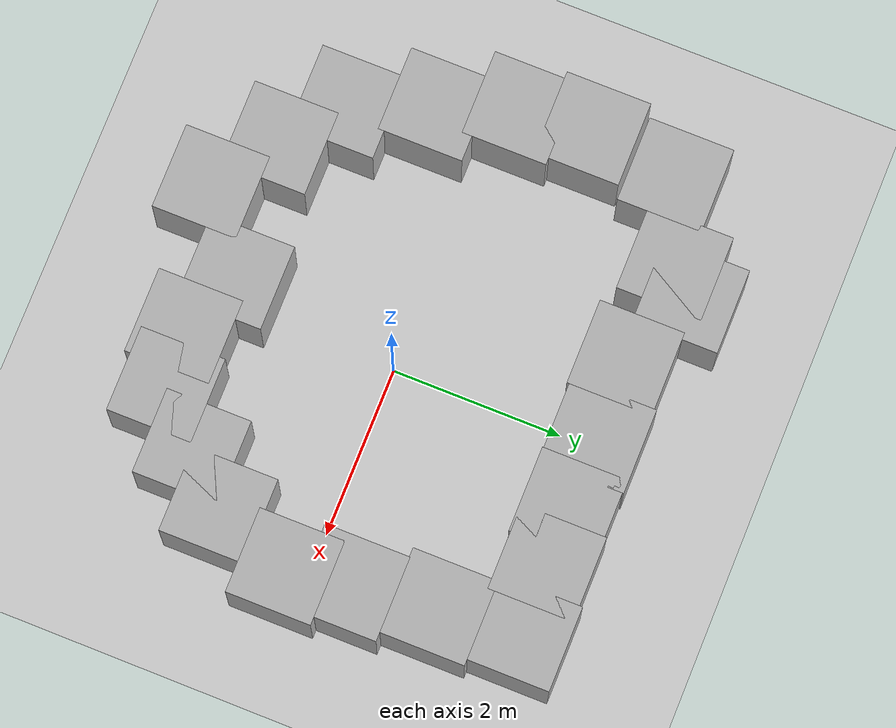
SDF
<sdf version='1.9'>
  <world name='empty'>
    <physics name='1ms' type='ignored'>
      <max_step_size>0.001</max_step_size>
      <real_time_factor>1</real_time_factor>
      <real_time_update_rate>1000</real_time_update_rate>
    </physics>
    <plugin name='gz::sim::systems::Physics' filename='ignition-gazebo-physics-system'/>
    <plugin name='gz::sim::systems::UserCommands' filename='ignition-gazebo-user-commands-system'/>
    <plugin name='gz::sim::systems::SceneBroadcaster' filename='ignition-gazebo-scene-broadcaster-system'/>
    <plugin name='gz::sim::systems::Contact' filename='ignition-gazebo-contact-system'/>
    <gravity>0 0 -9.8</gravity>
    <magnetic_field>6e-06 2.3e-05 -4.2e-05</magnetic_field>
    <atmosphere type='adiabatic'/>
    <scene>
      <ambient>0.4 0.4 0.4 1</ambient>
      <background>0.7 0.7 0.7 1</background>
      <shadows>true</shadows>
    </scene>
    <model name='ground_plane'>
      <static>true</static>
      <link name='link'>
        <collision name='collision'>
          <geometry>
            <plane>
              <normal>0 0 1</normal>
              <size>100 100</size>
            </plane>
          </geometry>
          <surface>
            <friction>
              <ode/>
            </friction>
            <bounce/>
            <contact/>
          </surface>
        </collision>
        <visual name='visual'>
          <geometry>
            <plane>
              <normal>0 0 1</normal>
              <size>100 100</size>
            </plane>
          </geometry>
          <material>
            <ambient>0.8 0.8 0.8 1</ambient>
            <diffuse>0.8 0.8 0.8 1</diffuse>
            <specular>0.8 0.8 0.8 1</specular>
          </material>
        </visual>
        <pose>0 0 0 0 -0 0</pose>
        <inertial>
          <pose>0 0 0 0 -0 0</pose>
          <mass>1</mass>
          <inertia>
            <ixx>1</ixx>
            <ixy>0</ixy>
            <ixz>0</ixz>
            <iyy>1</iyy>
            <iyz>0</iyz>
            <izz>1</izz>
          </inertia>
        </inertial>
        <enable_wind>false</enable_wind>
      </link>
      <pose>0 0 0 0 -0 0</pose>
      <self_collide>false</self_collide>
    </model>
    <model name='box'>
      <pose>-0.898926 2.39843 0.5 0 -0 0</pose>
      <link name='box_link'>
        <inertial>
          <inertia>
            <ixx>0.16666</ixx>
            <ixy>0</ixy>
            <ixz>0</ixz>
            <iyy>0.16666</iyy>
            <iyz>0</iyz>
            <izz>0.16666</izz>
          </inertia>
          <mass>1</mass>
          <pose>0 0 0 0 -0 0</pose>
        </inertial>
        <collision name='box_collision'>
          <geometry>
            <box>
              <size>1 1 1</size>
            </box>
          </geometry>
          <surface>
            <friction>
              <ode/>
            </friction>
            <bounce/>
            <contact/>
          </surface>
        </collision>
        <visual name='box_visual'>
          <geometry>
            <box>
              <size>1 1 1</size>
            </box>
          </geometry>
          <material>
            <ambient>0.3 0.3 0.3 1</ambient>
            <diffuse>0.7 0.7 0.7 1</diffuse>
            <specular>1 1 1 1</specular>
          </material>
        </visual>
        <pose>0 0 0 0 -0 0</pose>
        <enable_wind>false</enable_wind>
      </link>
      <static>false</static>
      <self_collide>false</self_collide>
    </model>
    <model name='box_0'>
      <pose>0.020861 2.42552 0.5 0 -0 0</pose>
      <link name='box_link'>
        <inertial>
          <inertia>
            <ixx>0.16666</ixx>
            <ixy>0</ixy>
            <ixz>0</ixz>
            <iyy>0.16666</iyy>
            <iyz>0</iyz>
            <izz>0.16666</izz>
          </inertia>
          <mass>1</mass>
          <pose>0 0 0 0 -0 0</pose>
        </inertial>
        <collision name='box_collision'>
          <geometry>
            <box>
              <size>1 1 1</size>
            </box>
          </geometry>
          <surface>
            <friction>
              <ode/>
            </friction>
            <bounce/>
            <contact/>
          </surface>
        </collision>
        <visual name='box_visual'>
          <geometry>
            <box>
              <size>1 1 1</size>
            </box>
          </geometry>
          <material>
            <ambient>0.3 0.3 0.3 1</ambient>
            <diffuse>0.7 0.7 0.7 1</diffuse>
            <specular>1 1 1 1</specular>
          </material>
        </visual>
        <pose>0 0 0 0 -0 0</pose>
        <enable_wind>false</enable_wind>
      </link>
      <static>false</static>
      <self_collide>false</self_collide>
    </model>
    <model name='box_1'>
      <pose>0.866888 2.41028 0.5 0 -0 0</pose>
      <link name='box_link'>
        <inertial>
          <inertia>
            <ixx>0.16666</ixx>
            <ixy>0</ixy>
            <ixz>0</ixz>
            <iyy>0.16666</iyy>
            <iyz>0</iyz>
            <izz>0.16666</izz>
          </inertia>
          <mass>1</mass>
        </inertial>
        <collision name='box_collision'>
          <geometry>
            <box>
              <size>1 1 1</size>
            </box>
          </geometry>
          <surface>
            <friction>
              <ode/>
            </friction>
            <bounce/>
            <contact/>
          </surface>
        </collision>
        <visual name='box_visual'>
          <geometry>
            <box>
              <size>1 1 1</size>
            </box>
          </geometry>
          <material>
            <ambient>0.3 0.3 0.3 1</ambient>
            <diffuse>0.7 0.7 0.7 1</diffuse>
            <specular>1 1 1 1</specular>
          </material>
        </visual>
      </link>
      <static>false</static>
      <self_collide>false</self_collide>
    </model>
    <model name='box_2'>
      <pose>1.54269 2.43107 0.5 0 -0 0</pose>
      <link name='box_link'>
        <inertial>
          <inertia>
            <ixx>0.16666</ixx>
            <ixy>0</ixy>
            <ixz>0</ixz>
            <iyy>0.16666</iyy>
            <iyz>0</iyz>
            <izz>0.16666</izz>
          </inertia>
          <mass>1</mass>
        </inertial>
        <collision name='box_collision'>
          <geometry>
            <box>
              <size>1 1 1</size>
            </box>
          </geometry>
          <surface>
            <friction>
              <ode/>
            </friction>
            <bounce/>
            <contact/>
          </surface>
        </collision>
        <visual name='box_visual'>
          <geometry>
            <box>
              <size>1 1 1</size>
            </box>
          </geometry>
          <material>
            <ambient>0.3 0.3 0.3 1</ambient>
            <diffuse>0.7 0.7 0.7 1</diffuse>
            <specular>1 1 1 1</specular>
          </material>
        </visual>
      </link>
      <static>false</static>
      <self_collide>false</self_collide>
    </model>
    <model name='box_3'>
      <pose>2.35078 2.4652 0.5 0 -0 0</pose>
      <link name='box_link'>
        <inertial>
          <inertia>
            <ixx>0.16666</ixx>
            <ixy>0</ixy>
            <ixz>0</ixz>
            <iyy>0.16666</iyy>
            <iyz>0</iyz>
            <izz>0.16666</izz>
          </inertia>
          <mass>1</mass>
        </inertial>
        <collision name='box_collision'>
          <geometry>
            <box>
              <size>1 1 1</size>
            </box>
          </geometry>
          <surface>
            <friction>
              <ode/>
            </friction>
            <bounce/>
            <contact/>
          </surface>
        </collision>
        <visual name='box_visual'>
          <geometry>
            <box>
              <size>1 1 1</size>
            </box>
          </geometry>
          <material>
            <ambient>0.3 0.3 0.3 1</ambient>
            <diffuse>0.7 0.7 0.7 1</diffuse>
            <specular>1 1 1 1</specular>
          </material>
        </visual>
      </link>
      <static>false</static>
      <self_collide>false</self_collide>
    </model>
    <model name='box_4'>
      <pose>2.42567 1.50993 0.5 0 -0 0</pose>
      <link name='box_link'>
        <inertial>
          <inertia>
            <ixx>0.16666</ixx>
            <ixy>0</ixy>
            <ixz>0</ixz>
            <iyy>0.16666</iyy>
            <iyz>0</iyz>
            <izz>0.16666</izz>
          </inertia>
          <mass>1</mass>
        </inertial>
        <collision name='box_collision'>
          <geometry>
            <box>
              <size>1 1 1</size>
            </box>
          </geometry>
          <surface>
            <friction>
              <ode/>
            </friction>
            <bounce/>
            <contact/>
          </surface>
        </collision>
        <visual name='box_visual'>
          <geometry>
            <box>
              <size>1 1 1</size>
            </box>
          </geometry>
          <material>
            <ambient>0.3 0.3 0.3 1</ambient>
            <diffuse>0.7 0.7 0.7 1</diffuse>
            <specular>1 1 1 1</specular>
          </material>
        </visual>
      </link>
      <static>false</static>
      <self_collide>false</self_collide>
    </model>
    <model name='box_5'>
      <pose>2.53529 0.520937 0.5 0 -0 0</pose>
      <link name='box_link'>
        <inertial>
          <inertia>
            <ixx>0.16666</ixx>
            <ixy>0</ixy>
            <ixz>0</ixz>
            <iyy>0.16666</iyy>
            <iyz>0</iyz>
            <izz>0.16666</izz>
          </inertia>
          <mass>1</mass>
        </inertial>
        <collision name='box_collision'>
          <geometry>
            <box>
              <size>1 1 1</size>
            </box>
          </geometry>
          <surface>
            <friction>
              <ode/>
            </friction>
            <bounce/>
            <contact/>
          </surface>
        </collision>
        <visual name='box_visual'>
          <geometry>
            <box>
              <size>1 1 1</size>
            </box>
          </geometry>
          <material>
            <ambient>0.3 0.3 0.3 1</ambient>
            <diffuse>0.7 0.7 0.7 1</diffuse>
            <specular>1 1 1 1</specular>
          </material>
        </visual>
      </link>
      <static>false</static>
      <self_collide>false</self_collide>
    </model>
    <model name='box_6'>
      <pose>2.63388 -0.206542 0.5 0 -0 0</pose>
      <link name='box_link'>
        <inertial>
          <inertia>
            <ixx>0.16666</ixx>
            <ixy>0</ixy>
            <ixz>0</ixz>
            <iyy>0.16666</iyy>
            <iyz>0</iyz>
            <izz>0.16666</izz>
          </inertia>
          <mass>1</mass>
        </inertial>
        <collision name='box_collision'>
          <geometry>
            <box>
              <size>1 1 1</size>
            </box>
          </geometry>
          <surface>
            <friction>
              <ode/>
            </friction>
            <bounce/>
            <contact/>
          </surface>
        </collision>
        <visual name='box_visual'>
          <geometry>
            <box>
              <size>1 1 1</size>
            </box>
          </geometry>
          <material>
            <ambient>0.3 0.3 0.3 1</ambient>
            <diffuse>0.7 0.7 0.7 1</diffuse>
            <specular>1 1 1 1</specular>
          </material>
        </visual>
      </link>
      <static>false</static>
      <self_collide>false</self_collide>
    </model>
    <model name='box_7'>
      <pose>2.27562 -1.13736 0.5 0 -0 0</pose>
      <link name='box_link'>
        <inertial>
          <inertia>
            <ixx>0.16666</ixx>
            <ixy>0</ixy>
            <ixz>0</ixz>
            <iyy>0.16666</iyy>
            <iyz>0</iyz>
            <izz>0.16666</izz>
          </inertia>
          <mass>1</mass>
        </inertial>
        <collision name='box_collision'>
          <geometry>
            <box>
              <size>1 1 1</size>
            </box>
          </geometry>
          <surface>
            <friction>
              <ode/>
            </friction>
            <bounce/>
            <contact/>
          </surface>
        </collision>
        <visual name='box_visual'>
          <geometry>
            <box>
              <size>1 1 1</size>
            </box>
          </geometry>
          <material>
            <ambient>0.3 0.3 0.3 1</ambient>
            <diffuse>0.7 0.7 0.7 1</diffuse>
            <specular>1 1 1 1</specular>
          </material>
        </visual>
      </link>
      <static>false</static>
      <self_collide>false</self_collide>
    </model>
    <model name='box_8'>
      <pose>1.78259 -1.65294 0.5 0 -0 0</pose>
      <link name='box_link'>
        <inertial>
          <inertia>
            <ixx>0.16666</ixx>
            <ixy>0</ixy>
            <ixz>0</ixz>
            <iyy>0.16666</iyy>
            <iyz>0</iyz>
            <izz>0.16666</izz>
          </inertia>
          <mass>1</mass>
        </inertial>
        <collision name='box_collision'>
          <geometry>
            <box>
              <size>1 1 1</size>
            </box>
          </geometry>
          <surface>
            <friction>
              <ode/>
            </friction>
            <bounce/>
            <contact/>
          </surface>
        </collision>
        <visual name='box_visual'>
          <geometry>
            <box>
              <size>1 1 1</size>
            </box>
          </geometry>
          <material>
            <ambient>0.3 0.3 0.3 1</ambient>
            <diffuse>0.7 0.7 0.7 1</diffuse>
            <specular>1 1 1 1</specular>
          </material>
        </visual>
      </link>
      <static>false</static>
      <self_collide>false</self_collide>
    </model>
    <model name='box_9'>
      <pose>1.24688 -2.18044 0.5 0 -0 0</pose>
      <link name='box_link'>
        <inertial>
          <inertia>
            <ixx>0.16666</ixx>
            <ixy>0</ixy>
            <ixz>0</ixz>
            <iyy>0.16666</iyy>
            <iyz>0</iyz>
            <izz>0.16666</izz>
          </inertia>
          <mass>1</mass>
        </inertial>
        <collision name='box_collision'>
          <geometry>
            <box>
              <size>1 1 1</size>
            </box>
          </geometry>
          <surface>
            <friction>
              <ode/>
            </friction>
            <bounce/>
            <contact/>
          </surface>
        </collision>
        <visual name='box_visual'>
          <geometry>
            <box>
              <size>1 1 1</size>
            </box>
          </geometry>
          <material>
            <ambient>0.3 0.3 0.3 1</ambient>
            <diffuse>0.7 0.7 0.7 1</diffuse>
            <specular>1 1 1 1</specular>
          </material>
        </visual>
      </link>
      <static>false</static>
      <self_collide>false</self_collide>
    </model>
    <model name='box_10'>
      <pose>0.566808 -2.24809 0.5 0 -0 0</pose>
      <link name='box_link'>
        <inertial>
          <inertia>
            <ixx>0.16666</ixx>
            <ixy>0</ixy>
            <ixz>0</ixz>
            <iyy>0.16666</iyy>
            <iyz>0</iyz>
            <izz>0.16666</izz>
          </inertia>
          <mass>1</mass>
        </inertial>
        <collision name='box_collision'>
          <geometry>
            <box>
              <size>1 1 1</size>
            </box>
          </geometry>
          <surface>
            <friction>
              <ode/>
            </friction>
            <bounce/>
            <contact/>
          </surface>
        </collision>
        <visual name='box_visual'>
          <geometry>
            <box>
              <size>1 1 1</size>
            </box>
          </geometry>
          <material>
            <ambient>0.3 0.3 0.3 1</ambient>
            <diffuse>0.7 0.7 0.7 1</diffuse>
            <specular>1 1 1 1</specular>
          </material>
        </visual>
      </link>
      <static>false</static>
      <self_collide>false</self_collide>
    </model>
    <model name='box_11'>
      <pose>-0.207328 -1.94807 0.5 0 -0 0</pose>
      <link name='box_link'>
        <inertial>
          <inertia>
            <ixx>0.16666</ixx>
            <ixy>0</ixy>
            <ixz>0</ixz>
            <iyy>0.16666</iyy>
            <iyz>0</iyz>
            <izz>0.16666</izz>
          </inertia>
          <mass>1</mass>
        </inertial>
        <collision name='box_collision'>
          <geometry>
            <box>
              <size>1 1 1</size>
            </box>
          </geometry>
          <surface>
            <friction>
              <ode/>
            </friction>
            <bounce/>
            <contact/>
          </surface>
        </collision>
        <visual name='box_visual'>
          <geometry>
            <box>
              <size>1 1 1</size>
            </box>
          </geometry>
          <material>
            <ambient>0.3 0.3 0.3 1</ambient>
            <diffuse>0.7 0.7 0.7 1</diffuse>
            <specular>1 1 1 1</specular>
          </material>
        </visual>
      </link>
      <static>false</static>
      <self_collide>false</self_collide>
    </model>
    <model name='box_12'>
      <pose>-1.05481 -2.58947 0.5 0 -0 0</pose>
      <link name='box_link'>
        <inertial>
          <inertia>
            <ixx>0.16666</ixx>
            <ixy>0</ixy>
            <ixz>0</ixz>
            <iyy>0.16666</iyy>
            <iyz>0</iyz>
            <izz>0.16666</izz>
          </inertia>
          <mass>1</mass>
        </inertial>
        <collision name='box_collision'>
          <geometry>
            <box>
              <size>1 1 1</size>
            </box>
          </geometry>
          <surface>
            <friction>
              <ode/>
            </friction>
            <bounce/>
            <contact/>
          </surface>
        </collision>
        <visual name='box_visual'>
          <geometry>
            <box>
              <size>1 1 1</size>
            </box>
          </geometry>
          <material>
            <ambient>0.3 0.3 0.3 1</ambient>
            <diffuse>0.7 0.7 0.7 1</diffuse>
            <specular>1 1 1 1</specular>
          </material>
        </visual>
      </link>
      <static>false</static>
      <self_collide>false</self_collide>
    </model>
    <model name='box_13'>
      <pose>-1.80112 -2.07003 0.5 0 -0 0</pose>
      <link name='box_link'>
        <inertial>
          <inertia>
            <ixx>0.16666</ixx>
            <ixy>0</ixy>
            <ixz>0</ixz>
            <iyy>0.16666</iyy>
            <iyz>0</iyz>
            <izz>0.16666</izz>
          </inertia>
          <mass>1</mass>
        </inertial>
        <collision name='box_collision'>
          <geometry>
            <box>
              <size>1 1 1</size>
            </box>
          </geometry>
          <surface>
            <friction>
              <ode/>
            </friction>
            <bounce/>
            <contact/>
          </surface>
        </collision>
        <visual name='box_visual'>
          <geometry>
            <box>
              <size>1 1 1</size>
            </box>
          </geometry>
          <material>
            <ambient>0.3 0.3 0.3 1</ambient>
            <diffuse>0.7 0.7 0.7 1</diffuse>
            <specular>1 1 1 1</specular>
          </material>
        </visual>
      </link>
      <static>false</static>
      <self_collide>false</self_collide>
    </model>
    <model name='box_14'>
      <pose>-2.46322 -1.52417 0.5 0 -0 0</pose>
      <link name='box_link'>
        <inertial>
          <inertia>
            <ixx>0.16666</ixx>
            <ixy>0</ixy>
            <ixz>0</ixz>
            <iyy>0.16666</iyy>
            <iyz>0</iyz>
            <izz>0.16666</izz>
          </inertia>
          <mass>1</mass>
        </inertial>
        <collision name='box_collision'>
          <geometry>
            <box>
              <size>1 1 1</size>
            </box>
          </geometry>
          <surface>
            <friction>
              <ode/>
            </friction>
            <bounce/>
            <contact/>
          </surface>
        </collision>
        <visual name='box_visual'>
          <geometry>
            <box>
              <size>1 1 1</size>
            </box>
          </geometry>
          <material>
            <ambient>0.3 0.3 0.3 1</ambient>
            <diffuse>0.7 0.7 0.7 1</diffuse>
            <specular>1 1 1 1</specular>
          </material>
        </visual>
      </link>
      <static>false</static>
      <self_collide>false</self_collide>
    </model>
    <model name='box_15'>
      <pose>-2.7995 -0.595741 0.5 0 -0 0</pose>
      <link name='box_link'>
        <inertial>
          <inertia>
            <ixx>0.16666</ixx>
            <ixy>0</ixy>
            <ixz>0</ixz>
            <iyy>0.16666</iyy>
            <iyz>0</iyz>
            <izz>0.16666</izz>
          </inertia>
          <mass>1</mass>
        </inertial>
        <collision name='box_collision'>
          <geometry>
            <box>
              <size>1 1 1</size>
            </box>
          </geometry>
          <surface>
            <friction>
              <ode/>
            </friction>
            <bounce/>
            <contact/>
          </surface>
        </collision>
        <visual name='box_visual'>
          <geometry>
            <box>
              <size>1 1 1</size>
            </box>
          </geometry>
          <material>
            <ambient>0.3 0.3 0.3 1</ambient>
            <diffuse>0.7 0.7 0.7 1</diffuse>
            <specular>1 1 1 1</specular>
          </material>
        </visual>
      </link>
      <static>false</static>
      <self_collide>false</self_collide>
    </model>
    <model name='box_16'>
      <pose>-3.10484 0.285167 0.5 0 -0 0</pose>
      <link name='box_link'>
        <inertial>
          <inertia>
            <ixx>0.16666</ixx>
            <ixy>0</ixy>
            <ixz>0</ixz>
            <iyy>0.16666</iyy>
            <iyz>0</iyz>
            <izz>0.16666</izz>
          </inertia>
          <mass>1</mass>
        </inertial>
        <collision name='box_collision'>
          <geometry>
            <box>
              <size>1 1 1</size>
            </box>
          </geometry>
          <surface>
            <friction>
              <ode/>
            </friction>
            <bounce/>
            <contact/>
          </surface>
        </collision>
        <visual name='box_visual'>
          <geometry>
            <box>
              <size>1 1 1</size>
            </box>
          </geometry>
          <material>
            <ambient>0.3 0.3 0.3 1</ambient>
            <diffuse>0.7 0.7 0.7 1</diffuse>
            <specular>1 1 1 1</specular>
          </material>
        </visual>
      </link>
      <static>false</static>
      <self_collide>false</self_collide>
    </model>
    <model name='box_17'>
      <pose>-3.18479 1.11428 0.5 0 -0 0</pose>
      <link name='box_link'>
        <inertial>
          <inertia>
            <ixx>0.16666</ixx>
            <ixy>0</ixy>
            <ixz>0</ixz>
            <iyy>0.16666</iyy>
            <iyz>0</iyz>
            <izz>0.16666</izz>
          </inertia>
          <mass>1</mass>
        </inertial>
        <collision name='box_collision'>
          <geometry>
            <box>
              <size>1 1 1</size>
            </box>
          </geometry>
          <surface>
            <friction>
              <ode/>
            </friction>
            <bounce/>
            <contact/>
          </surface>
        </collision>
        <visual name='box_visual'>
          <geometry>
            <box>
              <size>1 1 1</size>
            </box>
          </geometry>
          <material>
            <ambient>0.3 0.3 0.3 1</ambient>
            <diffuse>0.7 0.7 0.7 1</diffuse>
            <specular>1 1 1 1</specular>
          </material>
        </visual>
      </link>
      <static>false</static>
      <self_collide>false</self_collide>
    </model>
    <model name='box_18'>
      <pose>-3.0309 2.16086 0.5 0 -0 0</pose>
      <link name='box_link'>
        <inertial>
          <inertia>
            <ixx>0.16666</ixx>
            <ixy>0</ixy>
            <ixz>0</ixz>
            <iyy>0.16666</iyy>
            <iyz>0</iyz>
            <izz>0.16666</izz>
          </inertia>
          <mass>1</mass>
        </inertial>
        <collision name='box_collision'>
          <geometry>
            <box>
              <size>1 1 1</size>
            </box>
          </geometry>
          <surface>
            <friction>
              <ode/>
            </friction>
            <bounce/>
            <contact/>
          </surface>
        </collision>
        <visual name='box_visual'>
          <geometry>
            <box>
              <size>1 1 1</size>
            </box>
          </geometry>
          <material>
            <ambient>0.3 0.3 0.3 1</ambient>
            <diffuse>0.7 0.7 0.7 1</diffuse>
            <specular>1 1 1 1</specular>
          </material>
        </visual>
      </link>
      <static>false</static>
      <self_collide>false</self_collide>
    </model>
    <model name='box_19'>
      <pose>-2.09594 2.51479 0.5 0 -0 0</pose>
      <link name='box_link'>
        <inertial>
          <inertia>
            <ixx>0.16666</ixx>
            <ixy>0</ixy>
            <ixz>0</ixz>
            <iyy>0.16666</iyy>
            <iyz>0</iyz>
            <izz>0.16666</izz>
          </inertia>
          <mass>1</mass>
        </inertial>
        <collision name='box_collision'>
          <geometry>
            <box>
              <size>1 1 1</size>
            </box>
          </geometry>
          <surface>
            <friction>
              <ode/>
            </friction>
            <bounce/>
            <contact/>
          </surface>
        </collision>
        <visual name='box_visual'>
          <geometry>
            <box>
              <size>1 1 1</size>
            </box>
          </geometry>
          <material>
            <ambient>0.3 0.3 0.3 1</ambient>
            <diffuse>0.7 0.7 0.7 1</diffuse>
            <specular>1 1 1 1</specular>
          </material>
        </visual>
      </link>
      <static>false</static>
      <self_collide>false</self_collide>
    </model>
    <model name='box_20'>
      <pose>-1.81679 2.8132 0.5 0 -0 0</pose>
      <link name='box_link'>
        <inertial>
          <inertia>
            <ixx>0.16666</ixx>
            <ixy>0</ixy>
            <ixz>0</ixz>
            <iyy>0.16666</iyy>
            <iyz>0</iyz>
            <izz>0.16666</izz>
          </inertia>
          <mass>1</mass>
        </inertial>
        <collision name='box_collision'>
          <geometry>
            <box>
              <size>1 1 1</size>
            </box>
          </geometry>
          <surface>
            <friction>
              <ode/>
            </friction>
            <bounce/>
            <contact/>
          </surface>
        </collision>
        <visual name='box_visual'>
          <geometry>
            <box>
              <size>1 1 1</size>
            </box>
          </geometry>
          <material>
            <ambient>0.3 0.3 0.3 1</ambient>
            <diffuse>0.7 0.7 0.7 1</diffuse>
            <specular>1 1 1 1</specular>
          </material>
        </visual>
      </link>
      <static>false</static>
      <self_collide>false</self_collide>
    </model>
    <light name='sun' type='directional'>
      <pose>0 0 10 0 -0 0</pose>
      <cast_shadows>true</cast_shadows>
      <intensity>1</intensity>
      <direction>-0.5 0.1 -0.9</direction>
      <diffuse>0.8 0.8 0.8 1</diffuse>
      <specular>0.2 0.2 0.2 1</specular>
      <attenuation>
        <range>1000</range>
        <linear>0.01</linear>
        <constant>0.90000000000000002</constant>
        <quadratic>0.001</quadratic>
      </attenuation>
      <spot>
        <inner_angle>0</inner_angle>
        <outer_angle>0</outer_angle>
        <falloff>0</falloff>
      </spot>
    </light>
  </world>
</sdf>
